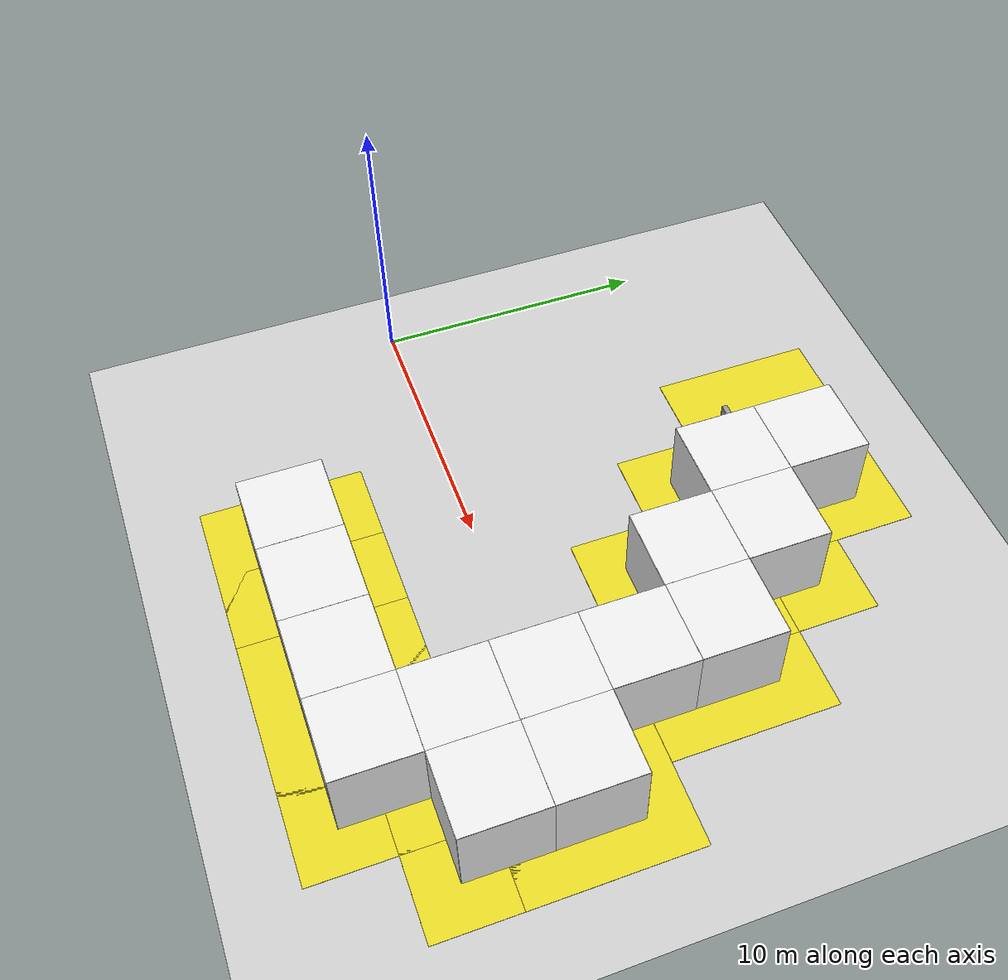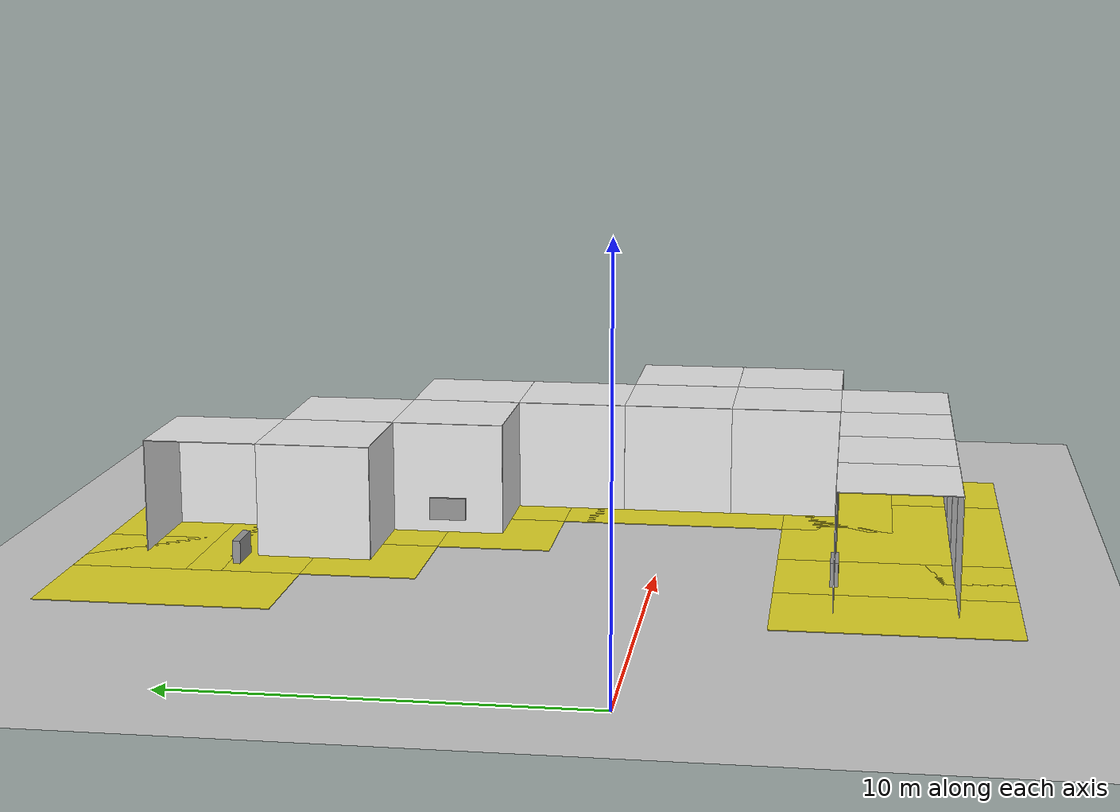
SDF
<sdf version="1.6">
 <world name="default">
  <model name="ground_plane">
   <static>1</static>
   <link name="link">
    <collision name="collision">
     <geometry><plane><normal>0 0 1</normal><size>200 200</size></plane></geometry>
     <surface><friction><ode><mu>100</mu><mu2>50</mu2></ode></friction></surface>
    </collision>
    <visual name="visual">
     <cast_shadows>0</cast_shadows>
     <geometry><plane><normal>0 0 1</normal><size>200 200</size></plane></geometry>
     <material>
      <script><uri>file://media/materials/scripts/gazebo.material</uri><name>Gazebo/Grey</name></script>
     </material>
    </visual>
   </link>
  </model>
  <model name="wall_bottom_3_4_0_1">
   <static>1</static>
   <pose>9.0 12.0 0.0 0.0 0.0 -1.57</pose>
   <link name="link">
    <collision name="collision"><geometry><box><size>6 6 0.02</size></box></geometry></collision>
    <visual name="visual">
     <material>
      <script><name>Gazebo/Yellow</name><uri>file://media/materials/scripts/gazebo.material</uri></script>
     </material>
     <geometry><box><size>6 6 0.02</size></box></geometry>
    </visual>
   </link>
  </model>
  <model name="panel_3_4_0_1">
   <static>1</static>
   <pose>9.0 10.5 0.66 0.0 0.0 -1.57</pose>
   <link name="link">
    <collision name="collision"><geometry><box><size>0.2 1 0.6</size></box></geometry></collision>
    <visual name="visual">
     <material>
      <script><name>Gazebo/Grey</name><uri>file://media/materials/scripts/gazebo.material</uri></script>
     </material>
     <geometry><box><size>0.2 1 0.6</size></box></geometry>
    </visual>
   </link>
  </model>
  <model name="wall_front_4_4_0_2">
   <static>1</static>
   <pose>13.5 12.0 1.5 0.0 0.0 -1.57</pose>
   <link name="link">
    <collision name="collision"><geometry><box><size>3 0.02 3</size></box></geometry></collision>
    <visual name="visual">
     <material>
      <script><name>Gazebo/White</name><uri>file://media/materials/scripts/gazebo.material</uri></script>
     </material>
     <geometry><box><size>3 0.02 3</size></box></geometry>
    </visual>
   </link>
  </model>
  <model name="wall_left_4_4_0_2">
   <static>1</static>
   <pose>12.0 13.5 1.5 0.0 0.0 0.0</pose>
   <link name="link">
    <collision name="collision"><geometry><box><size>3 0.02 3</size></box></geometry></collision>
    <visual name="visual">
     <material>
      <script><name>Gazebo/White</name><uri>file://media/materials/scripts/gazebo.material</uri></script>
     </material>
     <geometry><box><size>3 0.02 3</size></box></geometry>
    </visual>
   </link>
  </model>
  <model name="wall_top_4_4_0_2">
   <static>1</static>
   <pose>12.0 12.0 3.0 1.57 0.0 -1.57</pose>
   <link name="link">
    <collision name="collision"><geometry><box><size>3 0.02 3</size></box></geometry></collision>
    <visual name="visual">
     <material>
      <script><name>Gazebo/White</name><uri>file://media/materials/scripts/gazebo.material</uri></script>
     </material>
     <geometry><box><size>3 0.02 3</size></box></geometry>
    </visual>
   </link>
  </model>
  <model name="wall_bottom_4_4_0_2">
   <static>1</static>
   <pose>12.0 12.0 0.0 0.0 0.0 -1.57</pose>
   <link name="link">
    <collision name="collision"><geometry><box><size>6 6 0.02</size></box></geometry></collision>
    <visual name="visual">
     <material>
      <script><name>Gazebo/Yellow</name><uri>file://media/materials/scripts/gazebo.material</uri></script>
     </material>
     <geometry><box><size>6 6 0.02</size></box></geometry>
    </visual>
   </link>
  </model>
  <model name="wall_front_4_3_0_3">
   <static>1</static>
   <pose>12.0 7.5 1.5 0.0 0.0 3.14</pose>
   <link name="link">
    <collision name="collision"><geometry><box><size>3 0.02 3</size></box></geometry></collision>
    <visual name="visual">
     <material>
      <script><name>Gazebo/White</name><uri>file://media/materials/scripts/gazebo.material</uri></script>
     </material>
     <geometry><box><size>3 0.02 3</size></box></geometry>
    </visual>
   </link>
  </model>
  <model name="wall_right_4_3_0_3">
   <static>1</static>
   <pose>10.5 9.0 1.5 0.0 0.0 4.71</pose>
   <link name="link">
    <collision name="collision"><geometry><box><size>3 0.02 3</size></box></geometry></collision>
    <visual name="visual">
     <material>
      <script><name>Gazebo/White</name><uri>file://media/materials/scripts/gazebo.material</uri></script>
     </material>
     <geometry><box><size>3 0.02 3</size></box></geometry>
    </visual>
   </link>
  </model>
  <model name="wall_top_4_3_0_3">
   <static>1</static>
   <pose>12.0 9.0 3.0 1.57 0.0 3.14</pose>
   <link name="link">
    <collision name="collision"><geometry><box><size>3 0.02 3</size></box></geometry></collision>
    <visual name="visual">
     <material>
      <script><name>Gazebo/White</name><uri>file://media/materials/scripts/gazebo.material</uri></script>
     </material>
     <geometry><box><size>3 0.02 3</size></box></geometry>
    </visual>
   </link>
  </model>
  <model name="wall_bottom_4_3_0_3">
   <static>1</static>
   <pose>12.0 9.0 0.0 0.0 0.0 3.14</pose>
   <link name="link">
    <collision name="collision"><geometry><box><size>6 6 0.02</size></box></geometry></collision>
    <visual name="visual">
     <material>
      <script><name>Gazebo/Yellow</name><uri>file://media/materials/scripts/gazebo.material</uri></script>
     </material>
     <geometry><box><size>6 6 0.02</size></box></geometry>
    </visual>
   </link>
  </model>
  <model name="wall_front_5_3_0_2">
   <static>1</static>
   <pose>16.5 9.0 1.5 0.0 0.0 -1.57</pose>
   <link name="link">
    <collision name="collision"><geometry><box><size>3 0.02 3</size></box></geometry></collision>
    <visual name="visual">
     <material>
      <script><name>Gazebo/White</name><uri>file://media/materials/scripts/gazebo.material</uri></script>
     </material>
     <geometry><box><size>3 0.02 3</size></box></geometry>
    </visual>
   </link>
  </model>
  <model name="wall_left_5_3_0_2">
   <static>1</static>
   <pose>15.0 10.5 1.5 0.0 0.0 0.0</pose>
   <link name="link">
    <collision name="collision"><geometry><box><size>3 0.02 3</size></box></geometry></collision>
    <visual name="visual">
     <material>
      <script><name>Gazebo/White</name><uri>file://media/materials/scripts/gazebo.material</uri></script>
     </material>
     <geometry><box><size>3 0.02 3</size></box></geometry>
    </visual>
   </link>
  </model>
  <model name="wall_top_5_3_0_2">
   <static>1</static>
   <pose>15.0 9.0 3.0 1.57 0.0 -1.57</pose>
   <link name="link">
    <collision name="collision"><geometry><box><size>3 0.02 3</size></box></geometry></collision>
    <visual name="visual">
     <material>
      <script><name>Gazebo/White</name><uri>file://media/materials/scripts/gazebo.material</uri></script>
     </material>
     <geometry><box><size>3 0.02 3</size></box></geometry>
    </visual>
   </link>
  </model>
  <model name="wall_bottom_5_3_0_2">
   <static>1</static>
   <pose>15.0 9.0 0.0 0.0 0.0 -1.57</pose>
   <link name="link">
    <collision name="collision"><geometry><box><size>6 6 0.02</size></box></geometry></collision>
    <visual name="visual">
     <material>
      <script><name>Gazebo/Yellow</name><uri>file://media/materials/scripts/gazebo.material</uri></script>
     </material>
     <geometry><box><size>6 6 0.02</size></box></geometry>
    </visual>
   </link>
  </model>
  <model name="wall_front_5_2_0_3">
   <static>1</static>
   <pose>15.0 4.5 1.5 0.0 0.0 3.14</pose>
   <link name="link">
    <collision name="collision"><geometry><box><size>3 0.02 3</size></box></geometry></collision>
    <visual name="visual">
     <material>
      <script><name>Gazebo/White</name><uri>file://media/materials/scripts/gazebo.material</uri></script>
     </material>
     <geometry><box><size>3 0.02 3</size></box></geometry>
    </visual>
   </link>
  </model>
  <model name="wall_right_5_2_0_3">
   <static>1</static>
   <pose>13.5 6.0 1.5 0.0 0.0 4.71</pose>
   <link name="link">
    <collision name="collision"><geometry><box><size>3 0.02 3</size></box></geometry></collision>
    <visual name="visual">
     <material>
      <script><name>Gazebo/White</name><uri>file://media/materials/scripts/gazebo.material</uri></script>
     </material>
     <geometry><box><size>3 0.02 3</size></box></geometry>
    </visual>
   </link>
  </model>
  <model name="wall_top_5_2_0_3">
   <static>1</static>
   <pose>15.0 6.0 3.0 1.57 0.0 3.14</pose>
   <link name="link">
    <collision name="collision"><geometry><box><size>3 0.02 3</size></box></geometry></collision>
    <visual name="visual">
     <material>
      <script><name>Gazebo/White</name><uri>file://media/materials/scripts/gazebo.material</uri></script>
     </material>
     <geometry><box><size>3 0.02 3</size></box></geometry>
    </visual>
   </link>
  </model>
  <model name="wall_bottom_5_2_0_3">
   <static>1</static>
   <pose>15.0 6.0 0.0 0.0 0.0 3.14</pose>
   <link name="link">
    <collision name="collision"><geometry><box><size>6 6 0.02</size></box></geometry></collision>
    <visual name="visual">
     <material>
      <script><name>Gazebo/Yellow</name><uri>file://media/materials/scripts/gazebo.material</uri></script>
     </material>
     <geometry><box><size>6 6 0.02</size></box></geometry>
    </visual>
   </link>
  </model>
  <model name="panel_5_2_0_3">
   <static>1</static>
   <pose>13.5 6.0 0.66 0.0 0.0 3.14</pose>
   <link name="link">
    <collision name="collision"><geometry><box><size>0.2 1 0.6</size></box></geometry></collision>
    <visual name="visual">
     <material>
      <script><name>Gazebo/Grey</name><uri>file://media/materials/scripts/gazebo.material</uri></script>
     </material>
     <geometry><box><size>0.2 1 0.6</size></box></geometry>
    </visual>
   </link>
  </model>
  <model name="wall_front_6_2_0_2">
   <static>1</static>
   <pose>19.5 6.0 1.5 0.0 0.0 -1.57</pose>
   <link name="link">
    <collision name="collision"><geometry><box><size>3 0.02 3</size></box></geometry></collision>
    <visual name="visual">
     <material>
      <script><name>Gazebo/White</name><uri>file://media/materials/scripts/gazebo.material</uri></script>
     </material>
     <geometry><box><size>3 0.02 3</size></box></geometry>
    </visual>
   </link>
  </model>
  <model name="wall_left_6_2_0_2">
   <static>1</static>
   <pose>18.0 7.5 1.5 0.0 0.0 0.0</pose>
   <link name="link">
    <collision name="collision"><geometry><box><size>3 0.02 3</size></box></geometry></collision>
    <visual name="visual">
     <material>
      <script><name>Gazebo/White</name><uri>file://media/materials/scripts/gazebo.material</uri></script>
     </material>
     <geometry><box><size>3 0.02 3</size></box></geometry>
    </visual>
   </link>
  </model>
  <model name="wall_top_6_2_0_2">
   <static>1</static>
   <pose>18.0 6.0 3.0 1.57 0.0 -1.57</pose>
   <link name="link">
    <collision name="collision"><geometry><box><size>3 0.02 3</size></box></geometry></collision>
    <visual name="visual">
     <material>
      <script><name>Gazebo/White</name><uri>file://media/materials/scripts/gazebo.material</uri></script>
     </material>
     <geometry><box><size>3 0.02 3</size></box></geometry>
    </visual>
   </link>
  </model>
  <model name="wall_bottom_6_2_0_2">
   <static>1</static>
   <pose>18.0 6.0 0.0 0.0 0.0 -1.57</pose>
   <link name="link">
    <collision name="collision"><geometry><box><size>6 6 0.02</size></box></geometry></collision>
    <visual name="visual">
     <material>
      <script><name>Gazebo/Yellow</name><uri>file://media/materials/scripts/gazebo.material</uri></script>
     </material>
     <geometry><box><size>6 6 0.02</size></box></geometry>
    </visual>
   </link>
  </model>
  <model name="wall_right_6_1_0_1">
   <static>1</static>
   <pose>16.5 3.0 1.5 0.0 0.0 4.71</pose>
   <link name="link">
    <collision name="collision"><geometry><box><size>3 0.02 3</size></box></geometry></collision>
    <visual name="visual">
     <material>
      <script><name>Gazebo/White</name><uri>file://media/materials/scripts/gazebo.material</uri></script>
     </material>
     <geometry><box><size>3 0.02 3</size></box></geometry>
    </visual>
   </link>
  </model>
  <model name="wall_left_6_1_0_1">
   <static>1</static>
   <pose>19.5 3.0 1.5 0.0 0.0 4.71</pose>
   <link name="link">
    <collision name="collision"><geometry><box><size>3 0.02 3</size></box></geometry></collision>
    <visual name="visual">
     <material>
      <script><name>Gazebo/White</name><uri>file://media/materials/scripts/gazebo.material</uri></script>
     </material>
     <geometry><box><size>3 0.02 3</size></box></geometry>
    </visual>
   </link>
  </model>
  <model name="wall_top_6_1_0_1">
   <static>1</static>
   <pose>18.0 3.0 3.0 1.57 0.0 3.14</pose>
   <link name="link">
    <collision name="collision"><geometry><box><size>3 0.02 3</size></box></geometry></collision>
    <visual name="visual">
     <material>
      <script><name>Gazebo/White</name><uri>file://media/materials/scripts/gazebo.material</uri></script>
     </material>
     <geometry><box><size>3 0.02 3</size></box></geometry>
    </visual>
   </link>
  </model>
  <model name="wall_bottom_6_1_0_1">
   <static>1</static>
   <pose>18.0 3.0 0.0 0.0 0.0 3.14</pose>
   <link name="link">
    <collision name="collision"><geometry><box><size>6 6 0.02</size></box></geometry></collision>
    <visual name="visual">
     <material>
      <script><name>Gazebo/Yellow</name><uri>file://media/materials/scripts/gazebo.material</uri></script>
     </material>
     <geometry><box><size>6 6 0.02</size></box></geometry>
    </visual>
   </link>
  </model>
  <model name="wall_front_6_0_0_3">
   <static>1</static>
   <pose>18.0 -1.5 1.5 0.0 0.0 3.14</pose>
   <link name="link">
    <collision name="collision"><geometry><box><size>3 0.02 3</size></box></geometry></collision>
    <visual name="visual">
     <material>
      <script><name>Gazebo/White</name><uri>file://media/materials/scripts/gazebo.material</uri></script>
     </material>
     <geometry><box><size>3 0.02 3</size></box></geometry>
    </visual>
   </link>
  </model>
  <model name="wall_right_6_0_0_3">
   <static>1</static>
   <pose>16.5 0.0 1.5 0.0 0.0 4.71</pose>
   <link name="link">
    <collision name="collision"><geometry><box><size>3 0.02 3</size></box></geometry></collision>
    <visual name="visual">
     <material>
      <script><name>Gazebo/White</name><uri>file://media/materials/scripts/gazebo.material</uri></script>
     </material>
     <geometry><box><size>3 0.02 3</size></box></geometry>
    </visual>
   </link>
  </model>
  <model name="wall_top_6_0_0_3">
   <static>1</static>
   <pose>18.0 0.0 3.0 1.57 0.0 3.14</pose>
   <link name="link">
    <collision name="collision"><geometry><box><size>3 0.02 3</size></box></geometry></collision>
    <visual name="visual">
     <material>
      <script><name>Gazebo/White</name><uri>file://media/materials/scripts/gazebo.material</uri></script>
     </material>
     <geometry><box><size>3 0.02 3</size></box></geometry>
    </visual>
   </link>
  </model>
  <model name="wall_bottom_6_0_0_3">
   <static>1</static>
   <pose>18.0 0.0 0.0 0.0 0.0 3.14</pose>
   <link name="link">
    <collision name="collision"><geometry><box><size>6 6 0.02</size></box></geometry></collision>
    <visual name="visual">
     <material>
      <script><name>Gazebo/Yellow</name><uri>file://media/materials/scripts/gazebo.material</uri></script>
     </material>
     <geometry><box><size>6 6 0.02</size></box></geometry>
    </visual>
   </link>
  </model>
  <model name="wall_front_7_0_0_2">
   <static>1</static>
   <pose>22.5 0.0 1.5 0.0 0.0 -1.57</pose>
   <link name="link">
    <collision name="collision"><geometry><box><size>3 0.02 3</size></box></geometry></collision>
    <visual name="visual">
     <material>
      <script><name>Gazebo/White</name><uri>file://media/materials/scripts/gazebo.material</uri></script>
     </material>
     <geometry><box><size>3 0.02 3</size></box></geometry>
    </visual>
   </link>
  </model>
  <model name="wall_left_7_0_0_2">
   <static>1</static>
   <pose>21.0 1.5 1.5 0.0 0.0 0.0</pose>
   <link name="link">
    <collision name="collision"><geometry><box><size>3 0.02 3</size></box></geometry></collision>
    <visual name="visual">
     <material>
      <script><name>Gazebo/White</name><uri>file://media/materials/scripts/gazebo.material</uri></script>
     </material>
     <geometry><box><size>3 0.02 3</size></box></geometry>
    </visual>
   </link>
  </model>
  <model name="wall_top_7_0_0_2">
   <static>1</static>
   <pose>21.0 0.0 3.0 1.57 0.0 -1.57</pose>
   <link name="link">
    <collision name="collision"><geometry><box><size>3 0.02 3</size></box></geometry></collision>
    <visual name="visual">
     <material>
      <script><name>Gazebo/White</name><uri>file://media/materials/scripts/gazebo.material</uri></script>
     </material>
     <geometry><box><size>3 0.02 3</size></box></geometry>
    </visual>
   </link>
  </model>
  <model name="wall_bottom_7_0_0_2">
   <static>1</static>
   <pose>21.0 0.0 0.0 0.0 0.0 -1.57</pose>
   <link name="link">
    <collision name="collision"><geometry><box><size>6 6 0.02</size></box></geometry></collision>
    <visual name="visual">
     <material>
      <script><name>Gazebo/Yellow</name><uri>file://media/materials/scripts/gazebo.material</uri></script>
     </material>
     <geometry><box><size>6 6 0.02</size></box></geometry>
    </visual>
   </link>
  </model>
  <model name="wall_front_7_-1_0_2">
   <static>1</static>
   <pose>21.0 -4.5 1.5 0.0 0.0 3.14</pose>
   <link name="link">
    <collision name="collision"><geometry><box><size>3 0.02 3</size></box></geometry></collision>
    <visual name="visual">
     <material>
      <script><name>Gazebo/White</name><uri>file://media/materials/scripts/gazebo.material</uri></script>
     </material>
     <geometry><box><size>3 0.02 3</size></box></geometry>
    </visual>
   </link>
  </model>
  <model name="wall_left_7_-1_0_2">
   <static>1</static>
   <pose>22.5 -3.0 1.5 0.0 0.0 4.71</pose>
   <link name="link">
    <collision name="collision"><geometry><box><size>3 0.02 3</size></box></geometry></collision>
    <visual name="visual">
     <material>
      <script><name>Gazebo/White</name><uri>file://media/materials/scripts/gazebo.material</uri></script>
     </material>
     <geometry><box><size>3 0.02 3</size></box></geometry>
    </visual>
   </link>
  </model>
  <model name="wall_top_7_-1_0_2">
   <static>1</static>
   <pose>21.0 -3.0 3.0 1.57 0.0 3.14</pose>
   <link name="link">
    <collision name="collision"><geometry><box><size>3 0.02 3</size></box></geometry></collision>
    <visual name="visual">
     <material>
      <script><name>Gazebo/White</name><uri>file://media/materials/scripts/gazebo.material</uri></script>
     </material>
     <geometry><box><size>3 0.02 3</size></box></geometry>
    </visual>
   </link>
  </model>
  <model name="wall_bottom_7_-1_0_2">
   <static>1</static>
   <pose>21.0 -3.0 0.0 0.0 0.0 3.14</pose>
   <link name="link">
    <collision name="collision"><geometry><box><size>6 6 0.02</size></box></geometry></collision>
    <visual name="visual">
     <material>
      <script><name>Gazebo/Yellow</name><uri>file://media/materials/scripts/gazebo.material</uri></script>
     </material>
     <geometry><box><size>6 6 0.02</size></box></geometry>
    </visual>
   </link>
  </model>
  <model name="wall_front_6_-1_0_3">
   <static>1</static>
   <pose>16.5 -3.0 1.5 0.0 0.0 1.57</pose>
   <link name="link">
    <collision name="collision"><geometry><box><size>3 0.02 3</size></box></geometry></collision>
    <visual name="visual">
     <material>
      <script><name>Gazebo/White</name><uri>file://media/materials/scripts/gazebo.material</uri></script>
     </material>
     <geometry><box><size>3 0.02 3</size></box></geometry>
    </visual>
   </link>
  </model>
  <model name="wall_right_6_-1_0_3">
   <static>1</static>
   <pose>18.0 -1.5 1.5 0.0 0.0 3.14</pose>
   <link name="link">
    <collision name="collision"><geometry><box><size>3 0.02 3</size></box></geometry></collision>
    <visual name="visual">
     <material>
      <script><name>Gazebo/White</name><uri>file://media/materials/scripts/gazebo.material</uri></script>
     </material>
     <geometry><box><size>3 0.02 3</size></box></geometry>
    </visual>
   </link>
  </model>
  <model name="wall_top_6_-1_0_3">
   <static>1</static>
   <pose>18.0 -3.0 3.0 1.57 0.0 1.57</pose>
   <link name="link">
    <collision name="collision"><geometry><box><size>3 0.02 3</size></box></geometry></collision>
    <visual name="visual">
     <material>
      <script><name>Gazebo/White</name><uri>file://media/materials/scripts/gazebo.material</uri></script>
     </material>
     <geometry><box><size>3 0.02 3</size></box></geometry>
    </visual>
   </link>
  </model>
  <model name="wall_bottom_6_-1_0_3">
   <static>1</static>
   <pose>18.0 -3.0 0.0 0.0 0.0 1.57</pose>
   <link name="link">
    <collision name="collision"><geometry><box><size>6 6 0.02</size></box></geometry></collision>
    <visual name="visual">
     <material>
      <script><name>Gazebo/Yellow</name><uri>file://media/materials/scripts/gazebo.material</uri></script>
     </material>
     <geometry><box><size>6 6 0.02</size></box></geometry>
    </visual>
   </link>
  </model>
  <model name="wall_front_6_-2_0_2">
   <static>1</static>
   <pose>18.0 -7.5 1.5 0.0 0.0 3.14</pose>
   <link name="link">
    <collision name="collision"><geometry><box><size>3 0.02 3</size></box></geometry></collision>
    <visual name="visual">
     <material>
      <script><name>Gazebo/White</name><uri>file://media/materials/scripts/gazebo.material</uri></script>
     </material>
     <geometry><box><size>3 0.02 3</size></box></geometry>
    </visual>
   </link>
  </model>
  <model name="wall_left_6_-2_0_2">
   <static>1</static>
   <pose>19.5 -6.0 1.5 0.0 0.0 4.71</pose>
   <link name="link">
    <collision name="collision"><geometry><box><size>3 0.02 3</size></box></geometry></collision>
    <visual name="visual">
     <material>
      <script><name>Gazebo/White</name><uri>file://media/materials/scripts/gazebo.material</uri></script>
     </material>
     <geometry><box><size>3 0.02 3</size></box></geometry>
    </visual>
   </link>
  </model>
  <model name="wall_top_6_-2_0_2">
   <static>1</static>
   <pose>18.0 -6.0 3.0 1.57 0.0 3.14</pose>
   <link name="link">
    <collision name="collision"><geometry><box><size>3 0.02 3</size></box></geometry></collision>
    <visual name="visual">
     <material>
      <script><name>Gazebo/White</name><uri>file://media/materials/scripts/gazebo.material</uri></script>
     </material>
     <geometry><box><size>3 0.02 3</size></box></geometry>
    </visual>
   </link>
  </model>
  <model name="wall_bottom_6_-2_0_2">
   <static>1</static>
   <pose>18.0 -6.0 0.0 0.0 0.0 3.14</pose>
   <link name="link">
    <collision name="collision"><geometry><box><size>6 6 0.02</size></box></geometry></collision>
    <visual name="visual">
     <material>
      <script><name>Gazebo/Yellow</name><uri>file://media/materials/scripts/gazebo.material</uri></script>
     </material>
     <geometry><box><size>6 6 0.02</size></box></geometry>
    </visual>
   </link>
  </model>
  <model name="wall_right_5_-2_0_1">
   <static>1</static>
   <pose>15.0 -4.5 1.5 0.0 0.0 3.14</pose>
   <link name="link">
    <collision name="collision"><geometry><box><size>3 0.02 3</size></box></geometry></collision>
    <visual name="visual">
     <material>
      <script><name>Gazebo/White</name><uri>file://media/materials/scripts/gazebo.material</uri></script>
     </material>
     <geometry><box><size>3 0.02 3</size></box></geometry>
    </visual>
   </link>
  </model>
  <model name="wall_left_5_-2_0_1">
   <static>1</static>
   <pose>15.0 -7.5 1.5 0.0 0.0 3.14</pose>
   <link name="link">
    <collision name="collision"><geometry><box><size>3 0.02 3</size></box></geometry></collision>
    <visual name="visual">
     <material>
      <script><name>Gazebo/White</name><uri>file://media/materials/scripts/gazebo.material</uri></script>
     </material>
     <geometry><box><size>3 0.02 3</size></box></geometry>
    </visual>
   </link>
  </model>
  <model name="wall_top_5_-2_0_1">
   <static>1</static>
   <pose>15.0 -6.0 3.0 1.57 0.0 1.57</pose>
   <link name="link">
    <collision name="collision"><geometry><box><size>3 0.02 3</size></box></geometry></collision>
    <visual name="visual">
     <material>
      <script><name>Gazebo/White</name><uri>file://media/materials/scripts/gazebo.material</uri></script>
     </material>
     <geometry><box><size>3 0.02 3</size></box></geometry>
    </visual>
   </link>
  </model>
  <model name="wall_bottom_5_-2_0_1">
   <static>1</static>
   <pose>15.0 -6.0 0.0 0.0 0.0 1.57</pose>
   <link name="link">
    <collision name="collision"><geometry><box><size>6 6 0.02</size></box></geometry></collision>
    <visual name="visual">
     <material>
      <script><name>Gazebo/Yellow</name><uri>file://media/materials/scripts/gazebo.material</uri></script>
     </material>
     <geometry><box><size>6 6 0.02</size></box></geometry>
    </visual>
   </link>
  </model>
  <model name="wall_right_4_-2_0_1">
   <static>1</static>
   <pose>12.0 -4.5 1.5 0.0 0.0 3.14</pose>
   <link name="link">
    <collision name="collision"><geometry><box><size>3 0.02 3</size></box></geometry></collision>
    <visual name="visual">
     <material>
      <script><name>Gazebo/White</name><uri>file://media/materials/scripts/gazebo.material</uri></script>
     </material>
     <geometry><box><size>3 0.02 3</size></box></geometry>
    </visual>
   </link>
  </model>
  <model name="wall_left_4_-2_0_1">
   <static>1</static>
   <pose>12.0 -7.5 1.5 0.0 0.0 3.14</pose>
   <link name="link">
    <collision name="collision"><geometry><box><size>3 0.02 3</size></box></geometry></collision>
    <visual name="visual">
     <material>
      <script><name>Gazebo/White</name><uri>file://media/materials/scripts/gazebo.material</uri></script>
     </material>
     <geometry><box><size>3 0.02 3</size></box></geometry>
    </visual>
   </link>
  </model>
  <model name="wall_top_4_-2_0_1">
   <static>1</static>
   <pose>12.0 -6.0 3.0 1.57 0.0 1.57</pose>
   <link name="link">
    <collision name="collision"><geometry><box><size>3 0.02 3</size></box></geometry></collision>
    <visual name="visual">
     <material>
      <script><name>Gazebo/White</name><uri>file://media/materials/scripts/gazebo.material</uri></script>
     </material>
     <geometry><box><size>3 0.02 3</size></box></geometry>
    </visual>
   </link>
  </model>
  <model name="wall_bottom_4_-2_0_1">
   <static>1</static>
   <pose>12.0 -6.0 0.0 0.0 0.0 1.57</pose>
   <link name="link">
    <collision name="collision"><geometry><box><size>6 6 0.02</size></box></geometry></collision>
    <visual name="visual">
     <material>
      <script><name>Gazebo/Yellow</name><uri>file://media/materials/scripts/gazebo.material</uri></script>
     </material>
     <geometry><box><size>6 6 0.02</size></box></geometry>
    </visual>
   </link>
  </model>
  <model name="wall_right_3_-2_0_1">
   <static>1</static>
   <pose>9.0 -4.5 1.5 0.0 0.0 3.14</pose>
   <link name="link">
    <collision name="collision"><geometry><box><size>3 0.02 3</size></box></geometry></collision>
    <visual name="visual">
     <material>
      <script><name>Gazebo/White</name><uri>file://media/materials/scripts/gazebo.material</uri></script>
     </material>
     <geometry><box><size>3 0.02 3</size></box></geometry>
    </visual>
   </link>
  </model>
  <model name="wall_left_3_-2_0_1">
   <static>1</static>
   <pose>9.0 -7.5 1.5 0.0 0.0 3.14</pose>
   <link name="link">
    <collision name="collision"><geometry><box><size>3 0.02 3</size></box></geometry></collision>
    <visual name="visual">
     <material>
      <script><name>Gazebo/White</name><uri>file://media/materials/scripts/gazebo.material</uri></script>
     </material>
     <geometry><box><size>3 0.02 3</size></box></geometry>
    </visual>
   </link>
  </model>
  <model name="wall_top_3_-2_0_1">
   <static>1</static>
   <pose>9.0 -6.0 3.0 1.57 0.0 1.57</pose>
   <link name="link">
    <collision name="collision"><geometry><box><size>3 0.02 3</size></box></geometry></collision>
    <visual name="visual">
     <material>
      <script><name>Gazebo/White</name><uri>file://media/materials/scripts/gazebo.material</uri></script>
     </material>
     <geometry><box><size>3 0.02 3</size></box></geometry>
    </visual>
   </link>
  </model>
  <model name="wall_bottom_3_-2_0_1">
   <static>1</static>
   <pose>9.0 -6.0 0.0 0.0 0.0 1.57</pose>
   <link name="link">
    <collision name="collision"><geometry><box><size>6 6 0.02</size></box></geometry></collision>
    <visual name="visual">
     <material>
      <script><name>Gazebo/Yellow</name><uri>file://media/materials/scripts/gazebo.material</uri></script>
     </material>
     <geometry><box><size>6 6 0.02</size></box></geometry>
    </visual>
   </link>
  </model>
  <model name="panel_3_-2_0_1">
   <static>1</static>
   <pose>9.0 -4.5 0.66 0.0 0.0 1.57</pose>
   <link name="link">
    <collision name="collision"><geometry><box><size>0.2 1 0.6</size></box></geometry></collision>
    <visual name="visual">
     <material>
      <script><name>Gazebo/Grey</name><uri>file://media/materials/scripts/gazebo.material</uri></script>
     </material>
     <geometry><box><size>0.2 1 0.6</size></box></geometry>
    </visual>
   </link>
  </model>
 </world>
</sdf>
